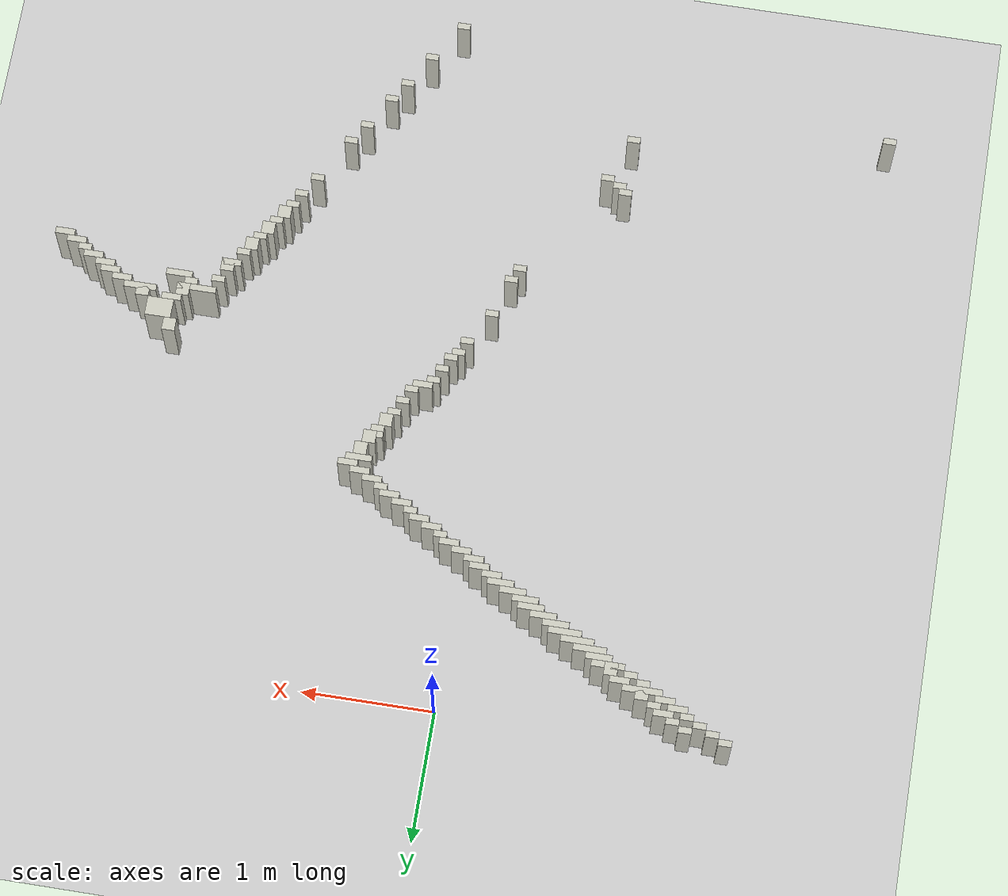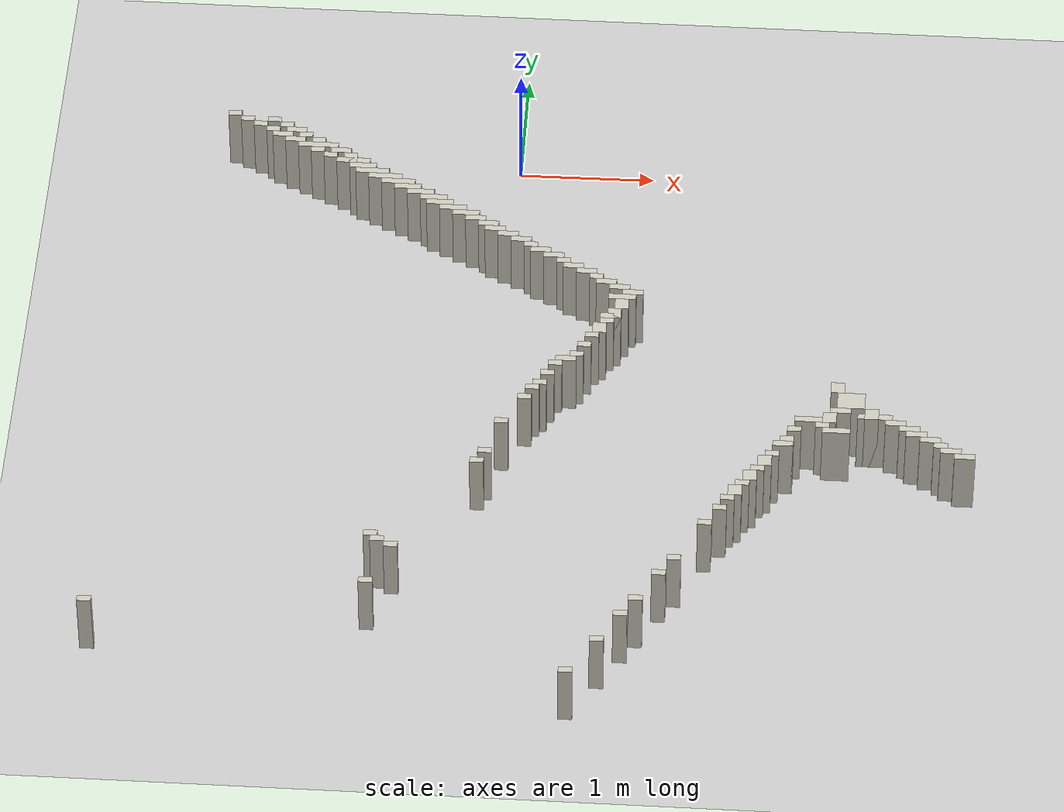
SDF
<sdf version="1.7">
 <world name="my_map_world">
  <model name="my_map_model">
   <static>1</static>
   <link name="link">
    <visual name="visual">
     <geometry><plane><normal>0 0 1</normal><size>27.15 22.15</size></plane></geometry>
     <material>
      <script>
       <uri>model://my_map_model/materials/scripts</uri>
       <uri>model://my_map_model/materials/textures</uri>
       <name>MyMapMaterial</name>
      </script>
     </material>
    </visual>
    <collision name="collision">
     <geometry><plane><normal>0 0 1</normal><size>27.15 22.15</size></plane></geometry>
     <surface><friction><ode><mu>100</mu><mu2>50</mu2></ode></friction></surface>
    </collision>
   </link>
   <pose>0.375 -4.225 0 0 -0 0</pose>
  </model>
  <model name="wall_104">
   <static>1</static>
   <pose>-2.15 0.025 0.25 0 -0 0</pose>
   <link name="link">
    <collision name="collision"><geometry><box><size>0.1 0.05 0.5</size></box></geometry></collision>
    <visual name="visual">
     <geometry><box><size>0.1 0.05 0.5</size></box></geometry>
     <material>
      <script><uri>file://media/materials/scripts/gazebo.material</uri><name>Gazebo/PaintedWall</name></script>
     </material>
    </visual>
   </link>
  </model>
  <model name="wall_107">
   <static>1</static>
   <pose>-2.05 -0.025 0.25 0 -0 0</pose>
   <link name="link">
    <collision name="collision"><geometry><box><size>0.1 0.05 0.5</size></box></geometry></collision>
    <visual name="visual">
     <geometry><box><size>0.1 0.05 0.5</size></box></geometry>
     <material>
      <script><uri>file://media/materials/scripts/gazebo.material</uri><name>Gazebo/PaintedWall</name></script>
     </material>
    </visual>
   </link>
  </model>
  <model name="wall_108">
   <static>1</static>
   <pose>-1.85 -0.025 0.25 0 -0 0</pose>
   <link name="link">
    <collision name="collision"><geometry><box><size>0.1 0.05 0.5</size></box></geometry></collision>
    <visual name="visual">
     <geometry><box><size>0.1 0.05 0.5</size></box></geometry>
     <material>
      <script><uri>file://media/materials/scripts/gazebo.material</uri><name>Gazebo/PaintedWall</name></script>
     </material>
    </visual>
   </link>
  </model>
  <model name="wall_110">
   <static>1</static>
   <pose>-1.95 -0.075 0.25 0 -0 0</pose>
   <link name="link">
    <collision name="collision"><geometry><box><size>0.1 0.05 0.5</size></box></geometry></collision>
    <visual name="visual">
     <geometry><box><size>0.1 0.05 0.5</size></box></geometry>
     <material>
      <script><uri>file://media/materials/scripts/gazebo.material</uri><name>Gazebo/PaintedWall</name></script>
     </material>
    </visual>
   </link>
  </model>
  <model name="wall_111">
   <static>1</static>
   <pose>-1.75 -0.075 0.25 0 -0 0</pose>
   <link name="link">
    <collision name="collision"><geometry><box><size>0.1 0.05 0.5</size></box></geometry></collision>
    <visual name="visual">
     <geometry><box><size>0.1 0.05 0.5</size></box></geometry>
     <material>
      <script><uri>file://media/materials/scripts/gazebo.material</uri><name>Gazebo/PaintedWall</name></script>
     </material>
    </visual>
   </link>
  </model>
  <model name="wall_113">
   <static>1</static>
   <pose>-1.85 -0.125 0.25 0 -0 0</pose>
   <link name="link">
    <collision name="collision"><geometry><box><size>0.1 0.05 0.5</size></box></geometry></collision>
    <visual name="visual">
     <geometry><box><size>0.1 0.05 0.5</size></box></geometry>
     <material>
      <script><uri>file://media/materials/scripts/gazebo.material</uri><name>Gazebo/PaintedWall</name></script>
     </material>
    </visual>
   </link>
  </model>
  <model name="wall_114">
   <static>1</static>
   <pose>-1.675 -0.125 0.25 0 -0 0</pose>
   <link name="link">
    <collision name="collision"><geometry><box><size>0.15 0.05 0.5</size></box></geometry></collision>
    <visual name="visual">
     <geometry><box><size>0.15 0.05 0.5</size></box></geometry>
     <material>
      <script><uri>file://media/materials/scripts/gazebo.material</uri><name>Gazebo/PaintedWall</name></script>
     </material>
    </visual>
   </link>
  </model>
  <model name="wall_116">
   <static>1</static>
   <pose>-1.775 -0.175 0.25 0 -0 0</pose>
   <link name="link">
    <collision name="collision"><geometry><box><size>0.15 0.05 0.5</size></box></geometry></collision>
    <visual name="visual">
     <geometry><box><size>0.15 0.05 0.5</size></box></geometry>
     <material>
      <script><uri>file://media/materials/scripts/gazebo.material</uri><name>Gazebo/PaintedWall</name></script>
     </material>
    </visual>
   </link>
  </model>
  <model name="wall_117">
   <static>1</static>
   <pose>-1.6 -0.175 0.25 0 -0 0</pose>
   <link name="link">
    <collision name="collision"><geometry><box><size>0.1 0.05 0.5</size></box></geometry></collision>
    <visual name="visual">
     <geometry><box><size>0.1 0.05 0.5</size></box></geometry>
     <material>
      <script><uri>file://media/materials/scripts/gazebo.material</uri><name>Gazebo/PaintedWall</name></script>
     </material>
    </visual>
   </link>
  </model>
  <model name="wall_119">
   <static>1</static>
   <pose>-1.675 -0.225 0.25 0 -0 0</pose>
   <link name="link">
    <collision name="collision"><geometry><box><size>0.15 0.05 0.5</size></box></geometry></collision>
    <visual name="visual">
     <geometry><box><size>0.15 0.05 0.5</size></box></geometry>
     <material>
      <script><uri>file://media/materials/scripts/gazebo.material</uri><name>Gazebo/PaintedWall</name></script>
     </material>
    </visual>
   </link>
  </model>
  <model name="wall_120">
   <static>1</static>
   <pose>-1.5 -0.275 0.25 0 -0 0</pose>
   <link name="link">
    <collision name="collision"><geometry><box><size>0.1 0.15 0.5</size></box></geometry></collision>
    <visual name="visual">
     <geometry><box><size>0.1 0.15 0.5</size></box></geometry>
     <material>
      <script><uri>file://media/materials/scripts/gazebo.material</uri><name>Gazebo/PaintedWall</name></script>
     </material>
    </visual>
   </link>
  </model>
  <model name="wall_122">
   <static>1</static>
   <pose>-1.5 -0.275 0.25 0 -0 0</pose>
   <link name="link">
    <collision name="collision"><geometry><box><size>0.3 0.05 0.5</size></box></geometry></collision>
    <visual name="visual">
     <geometry><box><size>0.3 0.05 0.5</size></box></geometry>
     <material>
      <script><uri>file://media/materials/scripts/gazebo.material</uri><name>Gazebo/PaintedWall</name></script>
     </material>
    </visual>
   </link>
  </model>
  <model name="wall_124">
   <static>1</static>
   <pose>-1.325 -0.325 0.25 0 -0 0</pose>
   <link name="link">
    <collision name="collision"><geometry><box><size>0.15 0.05 0.5</size></box></geometry></collision>
    <visual name="visual">
     <geometry><box><size>0.15 0.05 0.5</size></box></geometry>
     <material>
      <script><uri>file://media/materials/scripts/gazebo.material</uri><name>Gazebo/PaintedWall</name></script>
     </material>
    </visual>
   </link>
  </model>
  <model name="wall_126">
   <static>1</static>
   <pose>-1.4 -0.375 0.25 0 -0 0</pose>
   <link name="link">
    <collision name="collision"><geometry><box><size>0.1 0.05 0.5</size></box></geometry></collision>
    <visual name="visual">
     <geometry><box><size>0.1 0.05 0.5</size></box></geometry>
     <material>
      <script><uri>file://media/materials/scripts/gazebo.material</uri><name>Gazebo/PaintedWall</name></script>
     </material>
    </visual>
   </link>
  </model>
  <model name="wall_127">
   <static>1</static>
   <pose>-1.25 -0.4 0.25 0 -0 0</pose>
   <link name="link">
    <collision name="collision"><geometry><box><size>0.1 0.1 0.5</size></box></geometry></collision>
    <visual name="visual">
     <geometry><box><size>0.1 0.1 0.5</size></box></geometry>
     <material>
      <script><uri>file://media/materials/scripts/gazebo.material</uri><name>Gazebo/PaintedWall</name></script>
     </material>
    </visual>
   </link>
  </model>
  <model name="wall_129">
   <static>1</static>
   <pose>-1.225 -0.425 0.25 0 -0 0</pose>
   <link name="link">
    <collision name="collision"><geometry><box><size>0.25 0.05 0.5</size></box></geometry></collision>
    <visual name="visual">
     <geometry><box><size>0.25 0.05 0.5</size></box></geometry>
     <material>
      <script><uri>file://media/materials/scripts/gazebo.material</uri><name>Gazebo/PaintedWall</name></script>
     </material>
    </visual>
   </link>
  </model>
  <model name="wall_131">
   <static>1</static>
   <pose>-1.15 -0.475 0.25 0 -0 0</pose>
   <link name="link">
    <collision name="collision"><geometry><box><size>0.2 0.05 0.5</size></box></geometry></collision>
    <visual name="visual">
     <geometry><box><size>0.2 0.05 0.5</size></box></geometry>
     <material>
      <script><uri>file://media/materials/scripts/gazebo.material</uri><name>Gazebo/PaintedWall</name></script>
     </material>
    </visual>
   </link>
  </model>
  <model name="wall_133">
   <static>1</static>
   <pose>-1.075 -0.525 0.25 0 -0 0</pose>
   <link name="link">
    <collision name="collision"><geometry><box><size>0.25 0.05 0.5</size></box></geometry></collision>
    <visual name="visual">
     <geometry><box><size>0.25 0.05 0.5</size></box></geometry>
     <material>
      <script><uri>file://media/materials/scripts/gazebo.material</uri><name>Gazebo/PaintedWall</name></script>
     </material>
    </visual>
   </link>
  </model>
  <model name="wall_135">
   <static>1</static>
   <pose>-0.975 -0.575 0.25 0 -0 0</pose>
   <link name="link">
    <collision name="collision"><geometry><box><size>0.25 0.05 0.5</size></box></geometry></collision>
    <visual name="visual">
     <geometry><box><size>0.25 0.05 0.5</size></box></geometry>
     <material>
      <script><uri>file://media/materials/scripts/gazebo.material</uri><name>Gazebo/PaintedWall</name></script>
     </material>
    </visual>
   </link>
  </model>
  <model name="wall_137">
   <static>1</static>
   <pose>-0.875 -0.625 0.25 0 -0 0</pose>
   <link name="link">
    <collision name="collision"><geometry><box><size>0.25 0.05 0.5</size></box></geometry></collision>
    <visual name="visual">
     <geometry><box><size>0.25 0.05 0.5</size></box></geometry>
     <material>
      <script><uri>file://media/materials/scripts/gazebo.material</uri><name>Gazebo/PaintedWall</name></script>
     </material>
    </visual>
   </link>
  </model>
  <model name="wall_139">
   <static>1</static>
   <pose>-0.8 -0.675 0.25 0 -0 0</pose>
   <link name="link">
    <collision name="collision"><geometry><box><size>0.2 0.05 0.5</size></box></geometry></collision>
    <visual name="visual">
     <geometry><box><size>0.2 0.05 0.5</size></box></geometry>
     <material>
      <script><uri>file://media/materials/scripts/gazebo.material</uri><name>Gazebo/PaintedWall</name></script>
     </material>
    </visual>
   </link>
  </model>
  <model name="wall_141">
   <static>1</static>
   <pose>-0.7 -0.725 0.25 0 -0 0</pose>
   <link name="link">
    <collision name="collision"><geometry><box><size>0.2 0.05 0.5</size></box></geometry></collision>
    <visual name="visual">
     <geometry><box><size>0.2 0.05 0.5</size></box></geometry>
     <material>
      <script><uri>file://media/materials/scripts/gazebo.material</uri><name>Gazebo/PaintedWall</name></script>
     </material>
    </visual>
   </link>
  </model>
  <model name="wall_143">
   <static>1</static>
   <pose>-0.6 -0.775 0.25 0 -0 0</pose>
   <link name="link">
    <collision name="collision"><geometry><box><size>0.2 0.05 0.5</size></box></geometry></collision>
    <visual name="visual">
     <geometry><box><size>0.2 0.05 0.5</size></box></geometry>
     <material>
      <script><uri>file://media/materials/scripts/gazebo.material</uri><name>Gazebo/PaintedWall</name></script>
     </material>
    </visual>
   </link>
  </model>
  <model name="wall_145">
   <static>1</static>
   <pose>-0.55 -0.825 0.25 0 -0 0</pose>
   <link name="link">
    <collision name="collision"><geometry><box><size>0.2 0.05 0.5</size></box></geometry></collision>
    <visual name="visual">
     <geometry><box><size>0.2 0.05 0.5</size></box></geometry>
     <material>
      <script><uri>file://media/materials/scripts/gazebo.material</uri><name>Gazebo/PaintedWall</name></script>
     </material>
    </visual>
   </link>
  </model>
  <model name="wall_147">
   <static>1</static>
   <pose>-0.45 -0.875 0.25 0 -0 0</pose>
   <link name="link">
    <collision name="collision"><geometry><box><size>0.2 0.05 0.5</size></box></geometry></collision>
    <visual name="visual">
     <geometry><box><size>0.2 0.05 0.5</size></box></geometry>
     <material>
      <script><uri>file://media/materials/scripts/gazebo.material</uri><name>Gazebo/PaintedWall</name></script>
     </material>
    </visual>
   </link>
  </model>
  <model name="wall_149">
   <static>1</static>
   <pose>-0.35 -0.925 0.25 0 -0 0</pose>
   <link name="link">
    <collision name="collision"><geometry><box><size>0.2 0.05 0.5</size></box></geometry></collision>
    <visual name="visual">
     <geometry><box><size>0.2 0.05 0.5</size></box></geometry>
     <material>
      <script><uri>file://media/materials/scripts/gazebo.material</uri><name>Gazebo/PaintedWall</name></script>
     </material>
    </visual>
   </link>
  </model>
  <model name="wall_151">
   <static>1</static>
   <pose>-0.275 -0.975 0.25 0 -0 0</pose>
   <link name="link">
    <collision name="collision"><geometry><box><size>0.15 0.05 0.5</size></box></geometry></collision>
    <visual name="visual">
     <geometry><box><size>0.15 0.05 0.5</size></box></geometry>
     <material>
      <script><uri>file://media/materials/scripts/gazebo.material</uri><name>Gazebo/PaintedWall</name></script>
     </material>
    </visual>
   </link>
  </model>
  <model name="wall_153">
   <static>1</static>
   <pose>-0.175 -1.025 0.25 0 -0 0</pose>
   <link name="link">
    <collision name="collision"><geometry><box><size>0.15 0.05 0.5</size></box></geometry></collision>
    <visual name="visual">
     <geometry><box><size>0.15 0.05 0.5</size></box></geometry>
     <material>
      <script><uri>file://media/materials/scripts/gazebo.material</uri><name>Gazebo/PaintedWall</name></script>
     </material>
    </visual>
   </link>
  </model>
  <model name="wall_155">
   <static>1</static>
   <pose>-0.125 -1.075 0.25 0 -0 0</pose>
   <link name="link">
    <collision name="collision"><geometry><box><size>0.15 0.05 0.5</size></box></geometry></collision>
    <visual name="visual">
     <geometry><box><size>0.15 0.05 0.5</size></box></geometry>
     <material>
      <script><uri>file://media/materials/scripts/gazebo.material</uri><name>Gazebo/PaintedWall</name></script>
     </material>
    </visual>
   </link>
  </model>
  <model name="wall_157">
   <static>1</static>
   <pose>-0.025 -1.125 0.25 0 -0 0</pose>
   <link name="link">
    <collision name="collision"><geometry><box><size>0.15 0.05 0.5</size></box></geometry></collision>
    <visual name="visual">
     <geometry><box><size>0.15 0.05 0.5</size></box></geometry>
     <material>
      <script><uri>file://media/materials/scripts/gazebo.material</uri><name>Gazebo/PaintedWall</name></script>
     </material>
    </visual>
   </link>
  </model>
  <model name="wall_159">
   <static>1</static>
   <pose>0.075 -1.175 0.25 0 -0 0</pose>
   <link name="link">
    <collision name="collision"><geometry><box><size>0.15 0.05 0.5</size></box></geometry></collision>
    <visual name="visual">
     <geometry><box><size>0.15 0.05 0.5</size></box></geometry>
     <material>
      <script><uri>file://media/materials/scripts/gazebo.material</uri><name>Gazebo/PaintedWall</name></script>
     </material>
    </visual>
   </link>
  </model>
  <model name="wall_161">
   <static>1</static>
   <pose>0.15 -1.225 0.25 0 -0 0</pose>
   <link name="link">
    <collision name="collision"><geometry><box><size>0.1 0.05 0.5</size></box></geometry></collision>
    <visual name="visual">
     <geometry><box><size>0.1 0.05 0.5</size></box></geometry>
     <material>
      <script><uri>file://media/materials/scripts/gazebo.material</uri><name>Gazebo/PaintedWall</name></script>
     </material>
    </visual>
   </link>
  </model>
  <model name="wall_163">
   <static>1</static>
   <pose>0.225 -1.275 0.25 0 -0 0</pose>
   <link name="link">
    <collision name="collision"><geometry><box><size>0.15 0.05 0.5</size></box></geometry></collision>
    <visual name="visual">
     <geometry><box><size>0.15 0.05 0.5</size></box></geometry>
     <material>
      <script><uri>file://media/materials/scripts/gazebo.material</uri><name>Gazebo/PaintedWall</name></script>
     </material>
    </visual>
   </link>
  </model>
  <model name="wall_165">
   <static>1</static>
   <pose>0.325 -1.325 0.25 0 -0 0</pose>
   <link name="link">
    <collision name="collision"><geometry><box><size>0.15 0.05 0.5</size></box></geometry></collision>
    <visual name="visual">
     <geometry><box><size>0.15 0.05 0.5</size></box></geometry>
     <material>
      <script><uri>file://media/materials/scripts/gazebo.material</uri><name>Gazebo/PaintedWall</name></script>
     </material>
    </visual>
   </link>
  </model>
  <model name="wall_167">
   <static>1</static>
   <pose>0.4 -1.375 0.25 0 -0 0</pose>
   <link name="link">
    <collision name="collision"><geometry><box><size>0.1 0.05 0.5</size></box></geometry></collision>
    <visual name="visual">
     <geometry><box><size>0.1 0.05 0.5</size></box></geometry>
     <material>
      <script><uri>file://media/materials/scripts/gazebo.material</uri><name>Gazebo/PaintedWall</name></script>
     </material>
    </visual>
   </link>
  </model>
  <model name="wall_169">
   <static>1</static>
   <pose>0.475 -1.425 0.25 0 -0 0</pose>
   <link name="link">
    <collision name="collision"><geometry><box><size>0.15 0.05 0.5</size></box></geometry></collision>
    <visual name="visual">
     <geometry><box><size>0.15 0.05 0.5</size></box></geometry>
     <material>
      <script><uri>file://media/materials/scripts/gazebo.material</uri><name>Gazebo/PaintedWall</name></script>
     </material>
    </visual>
   </link>
  </model>
  <model name="wall_171">
   <static>1</static>
   <pose>0.575 -1.475 0.25 0 -0 0</pose>
   <link name="link">
    <collision name="collision"><geometry><box><size>0.15 0.05 0.5</size></box></geometry></collision>
    <visual name="visual">
     <geometry><box><size>0.15 0.05 0.5</size></box></geometry>
     <material>
      <script><uri>file://media/materials/scripts/gazebo.material</uri><name>Gazebo/PaintedWall</name></script>
     </material>
    </visual>
   </link>
  </model>
  <model name="wall_173">
   <static>1</static>
   <pose>0.65 -1.525 0.25 0 -0 0</pose>
   <link name="link">
    <collision name="collision"><geometry><box><size>0.1 0.05 0.5</size></box></geometry></collision>
    <visual name="visual">
     <geometry><box><size>0.1 0.05 0.5</size></box></geometry>
     <material>
      <script><uri>file://media/materials/scripts/gazebo.material</uri><name>Gazebo/PaintedWall</name></script>
     </material>
    </visual>
   </link>
  </model>
  <model name="wall_175">
   <static>1</static>
   <pose>0.725 -1.575 0.25 0 -0 0</pose>
   <link name="link">
    <collision name="collision"><geometry><box><size>0.15 0.05 0.5</size></box></geometry></collision>
    <visual name="visual">
     <geometry><box><size>0.15 0.05 0.5</size></box></geometry>
     <material>
      <script><uri>file://media/materials/scripts/gazebo.material</uri><name>Gazebo/PaintedWall</name></script>
     </material>
    </visual>
   </link>
  </model>
  <model name="wall_177">
   <static>1</static>
   <pose>0.825 -1.625 0.25 0 -0 0</pose>
   <link name="link">
    <collision name="collision"><geometry><box><size>0.15 0.05 0.5</size></box></geometry></collision>
    <visual name="visual">
     <geometry><box><size>0.15 0.05 0.5</size></box></geometry>
     <material>
      <script><uri>file://media/materials/scripts/gazebo.material</uri><name>Gazebo/PaintedWall</name></script>
     </material>
    </visual>
   </link>
  </model>
  <model name="wall_179">
   <static>1</static>
   <pose>0.925 -1.675 0.25 0 -0 0</pose>
   <link name="link">
    <collision name="collision"><geometry><box><size>0.15 0.05 0.5</size></box></geometry></collision>
    <visual name="visual">
     <geometry><box><size>0.15 0.05 0.5</size></box></geometry>
     <material>
      <script><uri>file://media/materials/scripts/gazebo.material</uri><name>Gazebo/PaintedWall</name></script>
     </material>
    </visual>
   </link>
  </model>
  <model name="wall_181">
   <static>1</static>
   <pose>0.85 -1.725 0.25 0 -0 0</pose>
   <link name="link">
    <collision name="collision"><geometry><box><size>0.2 0.05 0.5</size></box></geometry></collision>
    <visual name="visual">
     <geometry><box><size>0.2 0.05 0.5</size></box></geometry>
     <material>
      <script><uri>file://media/materials/scripts/gazebo.material</uri><name>Gazebo/PaintedWall</name></script>
     </material>
    </visual>
   </link>
  </model>
  <model name="wall_183">
   <static>1</static>
   <pose>0.85 -1.8 0.25 0 -0 0</pose>
   <link name="link">
    <collision name="collision"><geometry><box><size>0.1 0.1 0.5</size></box></geometry></collision>
    <visual name="visual">
     <geometry><box><size>0.1 0.1 0.5</size></box></geometry>
     <material>
      <script><uri>file://media/materials/scripts/gazebo.material</uri><name>Gazebo/PaintedWall</name></script>
     </material>
    </visual>
   </link>
  </model>
  <model name="wall_186">
   <static>1</static>
   <pose>0.8 -1.9 0.25 0 -0 0</pose>
   <link name="link">
    <collision name="collision"><geometry><box><size>0.1 0.1 0.5</size></box></geometry></collision>
    <visual name="visual">
     <geometry><box><size>0.1 0.1 0.5</size></box></geometry>
     <material>
      <script><uri>file://media/materials/scripts/gazebo.material</uri><name>Gazebo/PaintedWall</name></script>
     </material>
    </visual>
   </link>
  </model>
  <model name="wall_188">
   <static>1</static>
   <pose>0.775 -1.925 0.25 0 -0 0</pose>
   <link name="link">
    <collision name="collision"><geometry><box><size>0.15 0.05 0.5</size></box></geometry></collision>
    <visual name="visual">
     <geometry><box><size>0.15 0.05 0.5</size></box></geometry>
     <material>
      <script><uri>file://media/materials/scripts/gazebo.material</uri><name>Gazebo/PaintedWall</name></script>
     </material>
    </visual>
   </link>
  </model>
  <model name="wall_190">
   <static>1</static>
   <pose>0.75 -1.975 0.25 0 -0 0</pose>
   <link name="link">
    <collision name="collision"><geometry><box><size>0.1 0.05 0.5</size></box></geometry></collision>
    <visual name="visual">
     <geometry><box><size>0.1 0.05 0.5</size></box></geometry>
     <material>
      <script><uri>file://media/materials/scripts/gazebo.material</uri><name>Gazebo/PaintedWall</name></script>
     </material>
    </visual>
   </link>
  </model>
  <model name="wall_192">
   <static>1</static>
   <pose>0.7 -2.05 0.25 0 -0 0</pose>
   <link name="link">
    <collision name="collision"><geometry><box><size>0.1 0.1 0.5</size></box></geometry></collision>
    <visual name="visual">
     <geometry><box><size>0.1 0.1 0.5</size></box></geometry>
     <material>
      <script><uri>file://media/materials/scripts/gazebo.material</uri><name>Gazebo/PaintedWall</name></script>
     </material>
    </visual>
   </link>
  </model>
  <model name="wall_195">
   <static>1</static>
   <pose>0.65 -2.125 0.25 0 -0 0</pose>
   <link name="link">
    <collision name="collision"><geometry><box><size>0.1 0.05 0.5</size></box></geometry></collision>
    <visual name="visual">
     <geometry><box><size>0.1 0.05 0.5</size></box></geometry>
     <material>
      <script><uri>file://media/materials/scripts/gazebo.material</uri><name>Gazebo/PaintedWall</name></script>
     </material>
    </visual>
   </link>
  </model>
  <model name="wall_198">
   <static>1</static>
   <pose>0.6 -2.225 0.25 0 -0 0</pose>
   <link name="link">
    <collision name="collision"><geometry><box><size>0.1 0.05 0.5</size></box></geometry></collision>
    <visual name="visual">
     <geometry><box><size>0.1 0.05 0.5</size></box></geometry>
     <material>
      <script><uri>file://media/materials/scripts/gazebo.material</uri><name>Gazebo/PaintedWall</name></script>
     </material>
    </visual>
   </link>
  </model>
  <model name="wall_201">
   <static>1</static>
   <pose>0.55 -2.325 0.25 0 -0 0</pose>
   <link name="link">
    <collision name="collision"><geometry><box><size>0.1 0.05 0.5</size></box></geometry></collision>
    <visual name="visual">
     <geometry><box><size>0.1 0.05 0.5</size></box></geometry>
     <material>
      <script><uri>file://media/materials/scripts/gazebo.material</uri><name>Gazebo/PaintedWall</name></script>
     </material>
    </visual>
   </link>
  </model>
  <model name="wall_203">
   <static>1</static>
   <pose>0.475 -2.375 0.25 0 -0 0</pose>
   <link name="link">
    <collision name="collision"><geometry><box><size>0.15 0.05 0.5</size></box></geometry></collision>
    <visual name="visual">
     <geometry><box><size>0.15 0.05 0.5</size></box></geometry>
     <material>
      <script><uri>file://media/materials/scripts/gazebo.material</uri><name>Gazebo/PaintedWall</name></script>
     </material>
    </visual>
   </link>
  </model>
  <model name="wall_205">
   <static>1</static>
   <pose>0.4 -2.425 0.25 0 -0 0</pose>
   <link name="link">
    <collision name="collision"><geometry><box><size>0.1 0.05 0.5</size></box></geometry></collision>
    <visual name="visual">
     <geometry><box><size>0.1 0.05 0.5</size></box></geometry>
     <material>
      <script><uri>file://media/materials/scripts/gazebo.material</uri><name>Gazebo/PaintedWall</name></script>
     </material>
    </visual>
   </link>
  </model>
  <model name="wall_208">
   <static>1</static>
   <pose>0.35 -2.525 0.25 0 -0 0</pose>
   <link name="link">
    <collision name="collision"><geometry><box><size>0.1 0.05 0.5</size></box></geometry></collision>
    <visual name="visual">
     <geometry><box><size>0.1 0.05 0.5</size></box></geometry>
     <material>
      <script><uri>file://media/materials/scripts/gazebo.material</uri><name>Gazebo/PaintedWall</name></script>
     </material>
    </visual>
   </link>
  </model>
  <model name="wall_209">
   <static>1</static>
   <pose>2.45 -2.55 0.25 0 -0 0</pose>
   <link name="link">
    <collision name="collision"><geometry><box><size>0.1 0.1 0.5</size></box></geometry></collision>
    <visual name="visual">
     <geometry><box><size>0.1 0.1 0.5</size></box></geometry>
     <material>
      <script><uri>file://media/materials/scripts/gazebo.material</uri><name>Gazebo/PaintedWall</name></script>
     </material>
    </visual>
   </link>
  </model>
  <model name="wall_212">
   <static>1</static>
   <pose>0.3 -2.625 0.25 0 -0 0</pose>
   <link name="link">
    <collision name="collision"><geometry><box><size>0.1 0.05 0.5</size></box></geometry></collision>
    <visual name="visual">
     <geometry><box><size>0.1 0.05 0.5</size></box></geometry>
     <material>
      <script><uri>file://media/materials/scripts/gazebo.material</uri><name>Gazebo/PaintedWall</name></script>
     </material>
    </visual>
   </link>
  </model>
  <model name="wall_213">
   <static>1</static>
   <pose>2.55 -2.675 0.25 0 -0 0</pose>
   <link name="link">
    <collision name="collision"><geometry><box><size>0.2 0.15 0.5</size></box></geometry></collision>
    <visual name="visual">
     <geometry><box><size>0.2 0.15 0.5</size></box></geometry>
     <material>
      <script><uri>file://media/materials/scripts/gazebo.material</uri><name>Gazebo/PaintedWall</name></script>
     </material>
    </visual>
   </link>
  </model>
  <model name="wall_215">
   <static>1</static>
   <pose>0.25 -2.675 0.25 0 -0 0</pose>
   <link name="link">
    <collision name="collision"><geometry><box><size>0.1 0.05 0.5</size></box></geometry></collision>
    <visual name="visual">
     <geometry><box><size>0.1 0.05 0.5</size></box></geometry>
     <material>
      <script><uri>file://media/materials/scripts/gazebo.material</uri><name>Gazebo/PaintedWall</name></script>
     </material>
    </visual>
   </link>
  </model>
  <model name="wall_218">
   <static>1</static>
   <pose>0.2 -2.775 0.25 0 -0 0</pose>
   <link name="link">
    <collision name="collision"><geometry><box><size>0.1 0.05 0.5</size></box></geometry></collision>
    <visual name="visual">
     <geometry><box><size>0.1 0.05 0.5</size></box></geometry>
     <material>
      <script><uri>file://media/materials/scripts/gazebo.material</uri><name>Gazebo/PaintedWall</name></script>
     </material>
    </visual>
   </link>
  </model>
  <model name="wall_219">
   <static>1</static>
   <pose>2.475 -2.775 0.25 0 -0 0</pose>
   <link name="link">
    <collision name="collision"><geometry><box><size>0.15 0.05 0.5</size></box></geometry></collision>
    <visual name="visual">
     <geometry><box><size>0.15 0.05 0.5</size></box></geometry>
     <material>
      <script><uri>file://media/materials/scripts/gazebo.material</uri><name>Gazebo/PaintedWall</name></script>
     </material>
    </visual>
   </link>
  </model>
  <model name="wall_220">
   <static>1</static>
   <pose>2.7 -2.8 0.25 0 -0 0</pose>
   <link name="link">
    <collision name="collision"><geometry><box><size>0.1 0.1 0.5</size></box></geometry></collision>
    <visual name="visual">
     <geometry><box><size>0.1 0.1 0.5</size></box></geometry>
     <material>
      <script><uri>file://media/materials/scripts/gazebo.material</uri><name>Gazebo/PaintedWall</name></script>
     </material>
    </visual>
   </link>
  </model>
  <model name="wall_222">
   <static>1</static>
   <pose>2.4 -2.85 0.25 0 -0 0</pose>
   <link name="link">
    <collision name="collision"><geometry><box><size>0.1 0.1 0.5</size></box></geometry></collision>
    <visual name="visual">
     <geometry><box><size>0.1 0.1 0.5</size></box></geometry>
     <material>
      <script><uri>file://media/materials/scripts/gazebo.material</uri><name>Gazebo/PaintedWall</name></script>
     </material>
    </visual>
   </link>
  </model>
  <model name="wall_223">
   <static>1</static>
   <pose>2.725 -2.825 0.25 0 -0 0</pose>
   <link name="link">
    <collision name="collision"><geometry><box><size>0.25 0.05 0.5</size></box></geometry></collision>
    <visual name="visual">
     <geometry><box><size>0.25 0.05 0.5</size></box></geometry>
     <material>
      <script><uri>file://media/materials/scripts/gazebo.material</uri><name>Gazebo/PaintedWall</name></script>
     </material>
    </visual>
   </link>
  </model>
  <model name="wall_225">
   <static>1</static>
   <pose>2.3 -2.875 0.25 0 -0 0</pose>
   <link name="link">
    <collision name="collision"><geometry><box><size>0.3 0.05 0.5</size></box></geometry></collision>
    <visual name="visual">
     <geometry><box><size>0.3 0.05 0.5</size></box></geometry>
     <material>
      <script><uri>file://media/materials/scripts/gazebo.material</uri><name>Gazebo/PaintedWall</name></script>
     </material>
    </visual>
   </link>
  </model>
  <model name="wall_226">
   <static>1</static>
   <pose>2.875 -2.875 0.25 0 -0 0</pose>
   <link name="link">
    <collision name="collision"><geometry><box><size>0.15 0.05 0.5</size></box></geometry></collision>
    <visual name="visual">
     <geometry><box><size>0.15 0.05 0.5</size></box></geometry>
     <material>
      <script><uri>file://media/materials/scripts/gazebo.material</uri><name>Gazebo/PaintedWall</name></script>
     </material>
    </visual>
   </link>
  </model>
  <model name="wall_228">
   <static>1</static>
   <pose>2.35 -2.925 0.25 0 -0 0</pose>
   <link name="link">
    <collision name="collision"><geometry><box><size>0.1 0.05 0.5</size></box></geometry></collision>
    <visual name="visual">
     <geometry><box><size>0.1 0.05 0.5</size></box></geometry>
     <material>
      <script><uri>file://media/materials/scripts/gazebo.material</uri><name>Gazebo/PaintedWall</name></script>
     </material>
    </visual>
   </link>
  </model>
  <model name="wall_229">
   <static>1</static>
   <pose>2.975 -2.925 0.25 0 -0 0</pose>
   <link name="link">
    <collision name="collision"><geometry><box><size>0.15 0.05 0.5</size></box></geometry></collision>
    <visual name="visual">
     <geometry><box><size>0.15 0.05 0.5</size></box></geometry>
     <material>
      <script><uri>file://media/materials/scripts/gazebo.material</uri><name>Gazebo/PaintedWall</name></script>
     </material>
    </visual>
   </link>
  </model>
  <model name="wall_231">
   <static>1</static>
   <pose>2.15 -2.975 0.25 0 -0 0</pose>
   <link name="link">
    <collision name="collision"><geometry><box><size>0.1 0.05 0.5</size></box></geometry></collision>
    <visual name="visual">
     <geometry><box><size>0.1 0.05 0.5</size></box></geometry>
     <material>
      <script><uri>file://media/materials/scripts/gazebo.material</uri><name>Gazebo/PaintedWall</name></script>
     </material>
    </visual>
   </link>
  </model>
  <model name="wall_232">
   <static>1</static>
   <pose>2.45 -2.975 0.25 0 -0 0</pose>
   <link name="link">
    <collision name="collision"><geometry><box><size>0.2 0.05 0.5</size></box></geometry></collision>
    <visual name="visual">
     <geometry><box><size>0.2 0.05 0.5</size></box></geometry>
     <material>
      <script><uri>file://media/materials/scripts/gazebo.material</uri><name>Gazebo/PaintedWall</name></script>
     </material>
    </visual>
   </link>
  </model>
  <model name="wall_233">
   <static>1</static>
   <pose>3.025 -2.975 0.25 0 -0 0</pose>
   <link name="link">
    <collision name="collision"><geometry><box><size>0.15 0.05 0.5</size></box></geometry></collision>
    <visual name="visual">
     <geometry><box><size>0.15 0.05 0.5</size></box></geometry>
     <material>
      <script><uri>file://media/materials/scripts/gazebo.material</uri><name>Gazebo/PaintedWall</name></script>
     </material>
    </visual>
   </link>
  </model>
  <model name="wall_235">
   <static>1</static>
   <pose>0.05 -3.025 0.25 0 -0 0</pose>
   <link name="link">
    <collision name="collision"><geometry><box><size>0.1 0.05 0.5</size></box></geometry></collision>
    <visual name="visual">
     <geometry><box><size>0.1 0.05 0.5</size></box></geometry>
     <material>
      <script><uri>file://media/materials/scripts/gazebo.material</uri><name>Gazebo/PaintedWall</name></script>
     </material>
    </visual>
   </link>
  </model>
  <model name="wall_236">
   <static>1</static>
   <pose>3.125 -3.025 0.25 0 -0 0</pose>
   <link name="link">
    <collision name="collision"><geometry><box><size>0.15 0.05 0.5</size></box></geometry></collision>
    <visual name="visual">
     <geometry><box><size>0.15 0.05 0.5</size></box></geometry>
     <material>
      <script><uri>file://media/materials/scripts/gazebo.material</uri><name>Gazebo/PaintedWall</name></script>
     </material>
    </visual>
   </link>
  </model>
  <model name="wall_238">
   <static>1</static>
   <pose>2.1 -3.1 0.25 0 -0 0</pose>
   <link name="link">
    <collision name="collision"><geometry><box><size>0.1 0.1 0.5</size></box></geometry></collision>
    <visual name="visual">
     <geometry><box><size>0.1 0.1 0.5</size></box></geometry>
     <material>
      <script><uri>file://media/materials/scripts/gazebo.material</uri><name>Gazebo/PaintedWall</name></script>
     </material>
    </visual>
   </link>
  </model>
  <model name="wall_239">
   <static>1</static>
   <pose>3.2 -3.075 0.25 0 -0 0</pose>
   <link name="link">
    <collision name="collision"><geometry><box><size>0.1 0.05 0.5</size></box></geometry></collision>
    <visual name="visual">
     <geometry><box><size>0.1 0.05 0.5</size></box></geometry>
     <material>
      <script><uri>file://media/materials/scripts/gazebo.material</uri><name>Gazebo/PaintedWall</name></script>
     </material>
    </visual>
   </link>
  </model>
  <model name="wall_241">
   <static>1</static>
   <pose>2.075 -3.125 0.25 0 -0 0</pose>
   <link name="link">
    <collision name="collision"><geometry><box><size>0.15 0.05 0.5</size></box></geometry></collision>
    <visual name="visual">
     <geometry><box><size>0.15 0.05 0.5</size></box></geometry>
     <material>
      <script><uri>file://media/materials/scripts/gazebo.material</uri><name>Gazebo/PaintedWall</name></script>
     </material>
    </visual>
   </link>
  </model>
  <model name="wall_242">
   <static>1</static>
   <pose>3.275 -3.125 0.25 0 -0 0</pose>
   <link name="link">
    <collision name="collision"><geometry><box><size>0.15 0.05 0.5</size></box></geometry></collision>
    <visual name="visual">
     <geometry><box><size>0.15 0.05 0.5</size></box></geometry>
     <material>
      <script><uri>file://media/materials/scripts/gazebo.material</uri><name>Gazebo/PaintedWall</name></script>
     </material>
    </visual>
   </link>
  </model>
  <model name="wall_244">
   <static>1</static>
   <pose>3.375 -3.175 0.25 0 -0 0</pose>
   <link name="link">
    <collision name="collision"><geometry><box><size>0.15 0.05 0.5</size></box></geometry></collision>
    <visual name="visual">
     <geometry><box><size>0.15 0.05 0.5</size></box></geometry>
     <material>
      <script><uri>file://media/materials/scripts/gazebo.material</uri><name>Gazebo/PaintedWall</name></script>
     </material>
    </visual>
   </link>
  </model>
  <model name="wall_246">
   <static>1</static>
   <pose>2 -3.225 0.25 0 -0 0</pose>
   <link name="link">
    <collision name="collision"><geometry><box><size>0.1 0.05 0.5</size></box></geometry></collision>
    <visual name="visual">
     <geometry><box><size>0.1 0.05 0.5</size></box></geometry>
     <material>
      <script><uri>file://media/materials/scripts/gazebo.material</uri><name>Gazebo/PaintedWall</name></script>
     </material>
    </visual>
   </link>
  </model>
  <model name="wall_249">
   <static>1</static>
   <pose>1.95 -3.3 0.25 0 -0 0</pose>
   <link name="link">
    <collision name="collision"><geometry><box><size>0.1 0.1 0.5</size></box></geometry></collision>
    <visual name="visual">
     <geometry><box><size>0.1 0.1 0.5</size></box></geometry>
     <material>
      <script><uri>file://media/materials/scripts/gazebo.material</uri><name>Gazebo/PaintedWall</name></script>
     </material>
    </visual>
   </link>
  </model>
  <model name="wall_252">
   <static>1</static>
   <pose>-0.05 -3.325 0.25 0 -0 0</pose>
   <link name="link">
    <collision name="collision"><geometry><box><size>0.1 0.05 0.5</size></box></geometry></collision>
    <visual name="visual">
     <geometry><box><size>0.1 0.05 0.5</size></box></geometry>
     <material>
      <script><uri>file://media/materials/scripts/gazebo.material</uri><name>Gazebo/PaintedWall</name></script>
     </material>
    </visual>
   </link>
  </model>
  <model name="wall_254">
   <static>1</static>
   <pose>1.9 -3.375 0.25 0 -0 0</pose>
   <link name="link">
    <collision name="collision"><geometry><box><size>0.1 0.05 0.5</size></box></geometry></collision>
    <visual name="visual">
     <geometry><box><size>0.1 0.05 0.5</size></box></geometry>
     <material>
      <script><uri>file://media/materials/scripts/gazebo.material</uri><name>Gazebo/PaintedWall</name></script>
     </material>
    </visual>
   </link>
  </model>
  <model name="wall_257">
   <static>1</static>
   <pose>-0.1 -3.425 0.25 0 -0 0</pose>
   <link name="link">
    <collision name="collision"><geometry><box><size>0.1 0.05 0.5</size></box></geometry></collision>
    <visual name="visual">
     <geometry><box><size>0.1 0.05 0.5</size></box></geometry>
     <material>
      <script><uri>file://media/materials/scripts/gazebo.material</uri><name>Gazebo/PaintedWall</name></script>
     </material>
    </visual>
   </link>
  </model>
  <model name="wall_258">
   <static>1</static>
   <pose>1.85 -3.45 0.25 0 -0 0</pose>
   <link name="link">
    <collision name="collision"><geometry><box><size>0.1 0.1 0.5</size></box></geometry></collision>
    <visual name="visual">
     <geometry><box><size>0.1 0.1 0.5</size></box></geometry>
     <material>
      <script><uri>file://media/materials/scripts/gazebo.material</uri><name>Gazebo/PaintedWall</name></script>
     </material>
    </visual>
   </link>
  </model>
  <model name="wall_263">
   <static>1</static>
   <pose>1.8 -3.525 0.25 0 -0 0</pose>
   <link name="link">
    <collision name="collision"><geometry><box><size>0.1 0.05 0.5</size></box></geometry></collision>
    <visual name="visual">
     <geometry><box><size>0.1 0.05 0.5</size></box></geometry>
     <material>
      <script><uri>file://media/materials/scripts/gazebo.material</uri><name>Gazebo/PaintedWall</name></script>
     </material>
    </visual>
   </link>
  </model>
  <model name="wall_265">
   <static>1</static>
   <pose>1.75 -3.6 0.25 0 -0 0</pose>
   <link name="link">
    <collision name="collision"><geometry><box><size>0.1 0.1 0.5</size></box></geometry></collision>
    <visual name="visual">
     <geometry><box><size>0.1 0.1 0.5</size></box></geometry>
     <material>
      <script><uri>file://media/materials/scripts/gazebo.material</uri><name>Gazebo/PaintedWall</name></script>
     </material>
    </visual>
   </link>
  </model>
  <model name="wall_270">
   <static>1</static>
   <pose>1.7 -3.675 0.25 0 -0 0</pose>
   <link name="link">
    <collision name="collision"><geometry><box><size>0.1 0.05 0.5</size></box></geometry></collision>
    <visual name="visual">
     <geometry><box><size>0.1 0.05 0.5</size></box></geometry>
     <material>
      <script><uri>file://media/materials/scripts/gazebo.material</uri><name>Gazebo/PaintedWall</name></script>
     </material>
    </visual>
   </link>
  </model>
  <model name="wall_275">
   <static>1</static>
   <pose>1.65 -3.775 0.25 0 -0 0</pose>
   <link name="link">
    <collision name="collision"><geometry><box><size>0.1 0.05 0.5</size></box></geometry></collision>
    <visual name="visual">
     <geometry><box><size>0.1 0.05 0.5</size></box></geometry>
     <material>
      <script><uri>file://media/materials/scripts/gazebo.material</uri><name>Gazebo/PaintedWall</name></script>
     </material>
    </visual>
   </link>
  </model>
  <model name="wall_284">
   <static>1</static>
   <pose>1.55 -3.925 0.25 0 -0 0</pose>
   <link name="link">
    <collision name="collision"><geometry><box><size>0.1 0.05 0.5</size></box></geometry></collision>
    <visual name="visual">
     <geometry><box><size>0.1 0.05 0.5</size></box></geometry>
     <material>
      <script><uri>file://media/materials/scripts/gazebo.material</uri><name>Gazebo/PaintedWall</name></script>
     </material>
    </visual>
   </link>
  </model>
  <model name="wall_294">
   <static>1</static>
   <pose>-0.8 -4.175 0.25 0 -0 0</pose>
   <link name="link">
    <collision name="collision"><geometry><box><size>0.1 0.05 0.5</size></box></geometry></collision>
    <visual name="visual">
     <geometry><box><size>0.1 0.05 0.5</size></box></geometry>
     <material>
      <script><uri>file://media/materials/scripts/gazebo.material</uri><name>Gazebo/PaintedWall</name></script>
     </material>
    </visual>
   </link>
  </model>
  <model name="wall_297">
   <static>1</static>
   <pose>-0.75 -4.225 0.25 0 -0 0</pose>
   <link name="link">
    <collision name="collision"><geometry><box><size>0.1 0.05 0.5</size></box></geometry></collision>
    <visual name="visual">
     <geometry><box><size>0.1 0.05 0.5</size></box></geometry>
     <material>
      <script><uri>file://media/materials/scripts/gazebo.material</uri><name>Gazebo/PaintedWall</name></script>
     </material>
    </visual>
   </link>
  </model>
  <model name="wall_300">
   <static>1</static>
   <pose>-0.65 -4.275 0.25 0 -0 0</pose>
   <link name="link">
    <collision name="collision"><geometry><box><size>0.1 0.05 0.5</size></box></geometry></collision>
    <visual name="visual">
     <geometry><box><size>0.1 0.05 0.5</size></box></geometry>
     <material>
      <script><uri>file://media/materials/scripts/gazebo.material</uri><name>Gazebo/PaintedWall</name></script>
     </material>
    </visual>
   </link>
  </model>
  <model name="wall_301">
   <static>1</static>
   <pose>1.35 -4.275 0.25 0 -0 0</pose>
   <link name="link">
    <collision name="collision"><geometry><box><size>0.1 0.05 0.5</size></box></geometry></collision>
    <visual name="visual">
     <geometry><box><size>0.1 0.05 0.5</size></box></geometry>
     <material>
      <script><uri>file://media/materials/scripts/gazebo.material</uri><name>Gazebo/PaintedWall</name></script>
     </material>
    </visual>
   </link>
  </model>
  <model name="wall_311">
   <static>1</static>
   <pose>1.25 -4.425 0.25 0 -0 0</pose>
   <link name="link">
    <collision name="collision"><geometry><box><size>0.1 0.05 0.5</size></box></geometry></collision>
    <visual name="visual">
     <geometry><box><size>0.1 0.05 0.5</size></box></geometry>
     <material>
      <script><uri>file://media/materials/scripts/gazebo.material</uri><name>Gazebo/PaintedWall</name></script>
     </material>
    </visual>
   </link>
  </model>
  <model name="wall_329">
   <static>1</static>
   <pose>-0.8 -4.625 0.25 0 -0 0</pose>
   <link name="link">
    <collision name="collision"><geometry><box><size>0.1 0.05 0.5</size></box></geometry></collision>
    <visual name="visual">
     <geometry><box><size>0.1 0.05 0.5</size></box></geometry>
     <material>
      <script><uri>file://media/materials/scripts/gazebo.material</uri><name>Gazebo/PaintedWall</name></script>
     </material>
    </visual>
   </link>
  </model>
  <model name="wall_334">
   <static>1</static>
   <pose>1.1 -4.675 0.25 0 -0 0</pose>
   <link name="link">
    <collision name="collision"><geometry><box><size>0.1 0.05 0.5</size></box></geometry></collision>
    <visual name="visual">
     <geometry><box><size>0.1 0.05 0.5</size></box></geometry>
     <material>
      <script><uri>file://media/materials/scripts/gazebo.material</uri><name>Gazebo/PaintedWall</name></script>
     </material>
    </visual>
   </link>
  </model>
  <model name="wall_344">
   <static>1</static>
   <pose>1 -4.825 0.25 0 -0 0</pose>
   <link name="link">
    <collision name="collision"><geometry><box><size>0.1 0.05 0.5</size></box></geometry></collision>
    <visual name="visual">
     <geometry><box><size>0.1 0.05 0.5</size></box></geometry>
     <material>
      <script><uri>file://media/materials/scripts/gazebo.material</uri><name>Gazebo/PaintedWall</name></script>
     </material>
    </visual>
   </link>
  </model>
  <model name="wall_353">
   <static>1</static>
   <pose>-2.75 -4.925 0.25 0 -0 0</pose>
   <link name="link">
    <collision name="collision"><geometry><box><size>0.1 0.05 0.5</size></box></geometry></collision>
    <visual name="visual">
     <geometry><box><size>0.1 0.05 0.5</size></box></geometry>
     <material>
      <script><uri>file://media/materials/scripts/gazebo.material</uri><name>Gazebo/PaintedWall</name></script>
     </material>
    </visual>
   </link>
  </model>
  <model name="wall_363">
   <static>1</static>
   <pose>0.85 -5.075 0.25 0 -0 0</pose>
   <link name="link">
    <collision name="collision"><geometry><box><size>0.1 0.05 0.5</size></box></geometry></collision>
    <visual name="visual">
     <geometry><box><size>0.1 0.05 0.5</size></box></geometry>
     <material>
      <script><uri>file://media/materials/scripts/gazebo.material</uri><name>Gazebo/PaintedWall</name></script>
     </material>
    </visual>
   </link>
  </model>
  <model name="wall_381">
   <static>1</static>
   <pose>0.65 -5.375 0.25 0 -0 0</pose>
   <link name="link">
    <collision name="collision"><geometry><box><size>0.1 0.05 0.5</size></box></geometry></collision>
    <visual name="visual">
     <geometry><box><size>0.1 0.05 0.5</size></box></geometry>
     <material>
      <script><uri>file://media/materials/scripts/gazebo.material</uri><name>Gazebo/PaintedWall</name></script>
     </material>
    </visual>
   </link>
  </model>
 </world>
</sdf>
